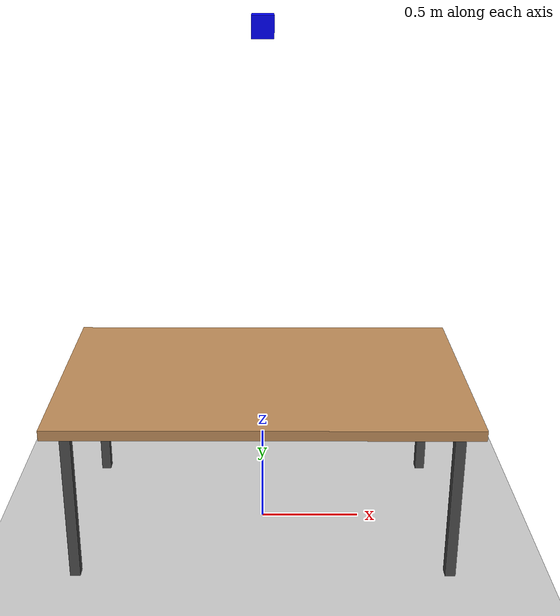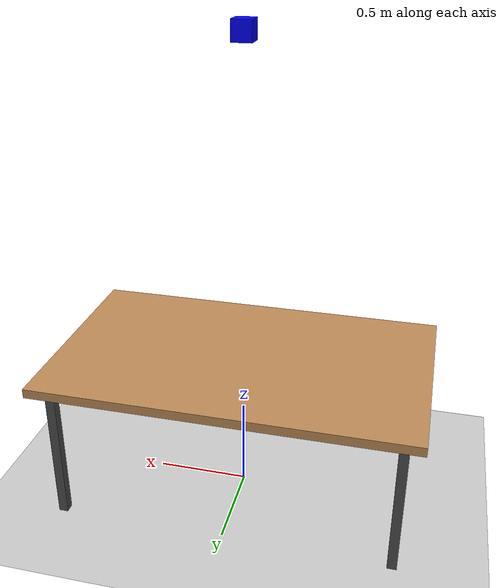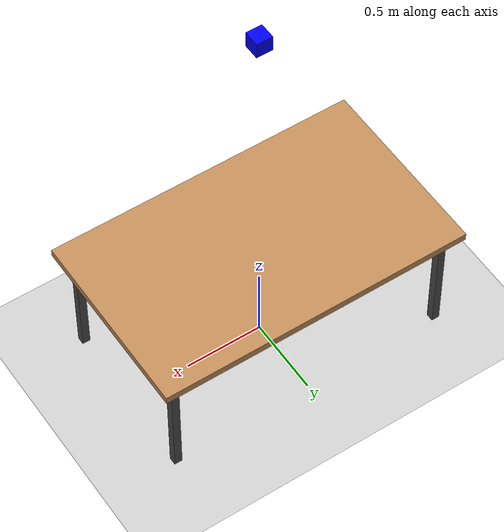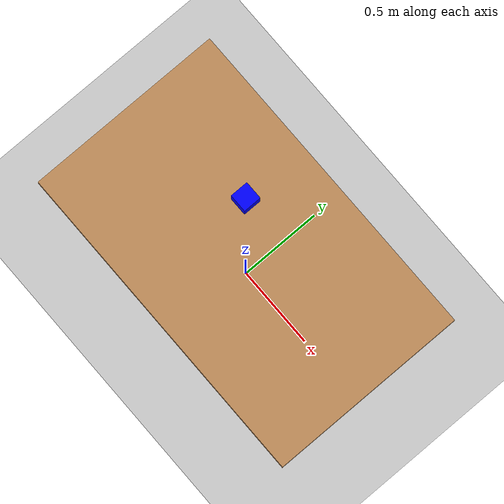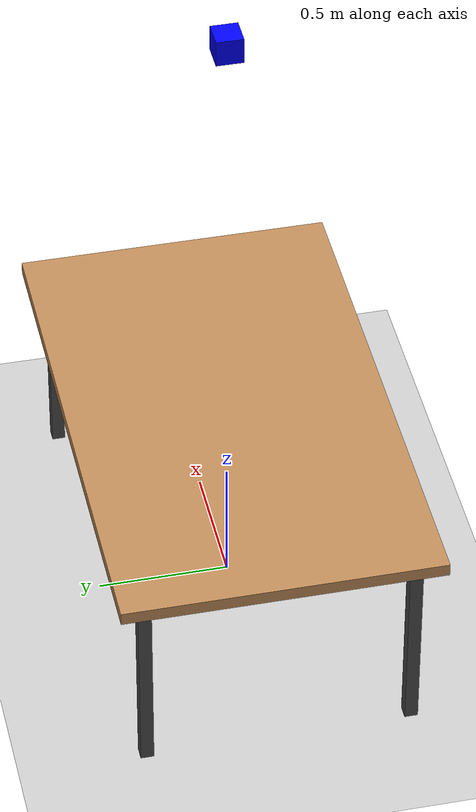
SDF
<?xml version="1.0" ?>
<sdf version="1.9">

  <world name="camera_world">

    <!-- 物理引擎 -->
    <physics type="ode">

      <max_step_size>0.001</max_step_size>

      <real_time_factor>1.0</real_time_factor>

    </physics>

    <!-- Gazebo系统插件 -->
    <plugin
      filename="gz-sim-physics-system"
      name="gz::sim::systems::Physics">
    </plugin>

    <plugin
      filename="gz-sim-user-commands-system"
      name="gz::sim::systems::UserCommands">
    </plugin>

    <plugin
      filename="gz-sim-scene-broadcaster-system"
      name="gz::sim::systems::SceneBroadcaster">
    </plugin>

    <!-- 关键：传感器系统 -->
    <plugin
      filename="gz-sim-sensors-system"
      name="gz::sim::systems::Sensors">

      <render_engine>ogre2</render_engine>

    </plugin>

    <!-- 光照 -->
    <light type="directional" name="sun">

      <cast_shadows>true</cast_shadows>

      <pose>0 0 10 0 0 0</pose>

      <diffuse>0.8 0.8 0.8 1</diffuse>

      <specular>0.2 0.2 0.2 1</specular>

      <direction>-0.5 0.1 -0.9</direction>

    </light>

    <!-- 地板 -->
    <model name="ground_plane">

      <static>true</static>

      <link name="link">

        <!-- 碰撞 -->
        <collision name="collision">

          <geometry>

            <plane>

              <normal>0 0 1</normal>

              <size>100 100</size>

            </plane>

          </geometry>

        </collision>

        <!-- 可视化 -->
        <visual name="visual">

          <geometry>

            <plane>

              <normal>0 0 1</normal>

              <size>100 100</size>

            </plane>

          </geometry>

          <material>

            <ambient>0.8 0.8 0.8 1</ambient>

            <diffuse>0.8 0.8 0.8 1</diffuse>

            <specular>0.1 0.1 0.1 1</specular>

          </material>

        </visual>

      </link>

    </model>

    <!-- 工作桌 -->
    <model name="table">

      <static>true</static>

      <pose>0 0 0 0 0 0</pose>

      <!-- 桌面 -->
      <link name="table_top">

        <pose>0 0 0.8 0 0 0</pose>

        <collision name="collision">

          <geometry>

            <box>

              <size>2.0 1.2 0.05</size>

            </box>

          </geometry>

        </collision>

        <visual name="visual">

          <geometry>

            <box>

              <size>2.0 1.2 0.05</size>

            </box>

          </geometry>

          <material>

            <ambient>0.75 0.55 0.35 1</ambient>

            <diffuse>0.75 0.55 0.35 1</diffuse>

          </material>

        </visual>

      </link>

      <!-- 左前腿 -->
      <link name="leg_1">

        <pose>0.9 0.5 0.4 0 0 0</pose>

        <collision name="collision">

          <geometry>

            <box>

              <size>0.05 0.05 0.8</size>

            </box>

          </geometry>

        </collision>

        <visual name="visual">

          <geometry>

            <box>

              <size>0.05 0.05 0.8</size>

            </box>

          </geometry>

          <material>

            <ambient>0.3 0.3 0.3 1</ambient>

            <diffuse>0.3 0.3 0.3 1</diffuse>

          </material>

        </visual>

      </link>

      <!-- 右前腿 -->
      <link name="leg_2">

        <pose>0.9 -0.5 0.4 0 0 0</pose>

        <collision name="collision">

          <geometry>

            <box>

              <size>0.05 0.05 0.8</size>

            </box>

          </geometry>

        </collision>

        <visual name="visual">

          <geometry>

            <box>

              <size>0.05 0.05 0.8</size>

            </box>

          </geometry>

          <material>

            <ambient>0.3 0.3 0.3 1</ambient>

            <diffuse>0.3 0.3 0.3 1</diffuse>

          </material>

        </visual>

      </link>

      <!-- 左后腿 -->
      <link name="leg_3">

        <pose>-0.9 0.5 0.4 0 0 0</pose>

        <collision name="collision">

          <geometry>

            <box>

              <size>0.05 0.05 0.8</size>

            </box>

          </geometry>

        </collision>

        <visual name="visual">

          <geometry>

            <box>

              <size>0.05 0.05 0.8</size>

            </box>

          </geometry>

          <material>

            <ambient>0.3 0.3 0.3 1</ambient>

            <diffuse>0.3 0.3 0.3 1</diffuse>

          </material>

        </visual>

      </link>

      <!-- 右后腿 -->
      <link name="leg_4">

        <pose>-0.9 -0.5 0.4 0 0 0</pose>

        <collision name="collision">

          <geometry>

            <box>

              <size>0.05 0.05 0.8</size>

            </box>

          </geometry>

        </collision>

        <visual name="visual">

          <geometry>

            <box>

              <size>0.05 0.05 0.8</size>

            </box>

          </geometry>

          <material>

            <ambient>0.3 0.3 0.3 1</ambient>

            <diffuse>0.3 0.3 0.3 1</diffuse>

          </material>

        </visual>

      </link>

    </model>

    <!-- 顶视摄像头 -->
    <model name="top_camera">

      <static>true</static>

      <!-- 摄像头位于桌子正上方 -->
      <pose>0 0 2.5 0 1.5707 1.5707</pose>

      <link name="camera_link">

        <!-- 摄像头可视化 -->
        <visual name="camera_visual">

          <geometry>

            <box>

              <size>0.1 0.1 0.1</size>

            </box>

          </geometry>

          <material>

            <ambient>0 0 1 1</ambient>

            <diffuse>0 0 1 1</diffuse>

          </material>

        </visual>

        <!-- Camera Sensor -->
        <sensor
          name="camera_sensor"
          type="camera">

          <always_on>true</always_on>

          <update_rate>30</update_rate>

          <visualize>true</visualize>

          <topic>/top_camera/image</topic>

          <camera name="camera">

            <pose>0 0 0 0 0 0</pose>

            <horizontal_fov>1.047</horizontal_fov>

            <image>

              <width>640</width>

              <height>480</height>

              <format>R8G8B8</format>

            </image>

            <clip>

              <near>0.1</near>

              <far>100</far>

            </clip>

          </camera>

        </sensor>

      </link>

    </model>

  </world>

</sdf>
